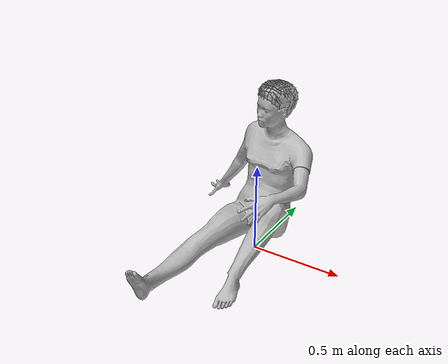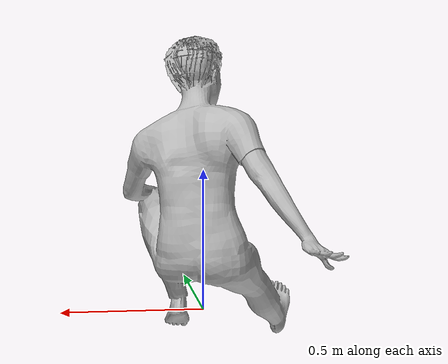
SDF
<?xml version="1.0" ?>

<sdf version="1.4">

 <model name="citizen_extras_female_04">

    <link name="link">

     <inertial>

       <mass>20</mass>

       <inertia>

         <ixx>0.0</ixx>

         <ixy>0.0</ixy>

         <ixz>0.0</ixz>

         <iyy>0.0</iyy>

         <iyz>0.0</iyz>

         <izz>0.0</izz>

       </inertia>

     </inertial>

     <collision name="collision">

       <pose>0 0 0 0 0 0</pose>

       <geometry>
         <box>
           <size>0.7 1 0.2</size>
         </box>
         <mesh>

           <uri>model://citizen_extras_female_04/meshes/meshv2.dae</uri>

         </mesh>

       </geometry>

     </collision>

     <visual name="visual">

       <pose>0 0 0 0 0 0</pose>

       <geometry>

         <mesh>

           <uri>model://citizen_extras_female_04/meshes/meshv2.dae</uri>

         </mesh>

       </geometry>

     </visual>

    </link>

 </model>
</sdf>
